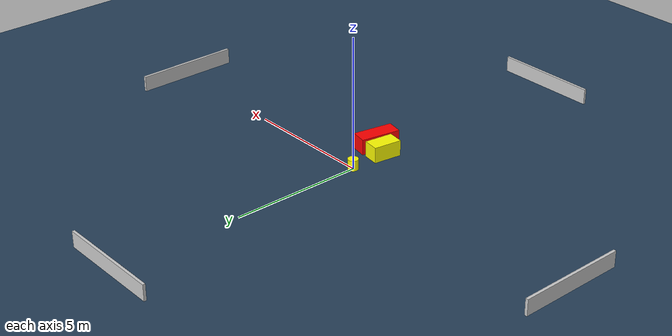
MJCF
<?xml version="1.0" ?>
<mujoco model="generated_environment">
  <option timestep="0.01" integrator="RK4" cone="elliptic"/>
  <default>
    <geom density="1"/>
  </default>
  <asset>
    <texture builtin="gradient" height="3072" name="skybox" rgb1="0.3 0.5 0.7" rgb2="0 0 0" type="skybox" width="512"/>
    <texture builtin="checker" height="300" name="groundplane" rgb1="0.2 0.3 0.4" rgb2="0.1 0.2 0.3" type="2d" width="300"/>
    <material name="groundplane" reflectance="0.2" texrepeat="5 5" texture="groundplane"/>
  </asset>
  <worldbody>
    <light dir="0 0 -1" directional="true" pos="0 0 1.5"/>
    <geom condim="3" friction="0.5 0.005 0.001" material="groundplane" name="floor" pos="0 0 0" size="0 0 0.05" type="plane"/>
    <body name="walls">
      <geom name="wall_1" condim="4" pos="-10.0 0.0 0.3" rgba="0.800000011920929 0.800000011920929 0.800000011920929 1.0" size="0.05 2.0 0.3" type="box"/>
      <geom name="wall_2" condim="4" pos="10.0 0.0 0.3" rgba="0.800000011920929 0.800000011920929 0.800000011920929 1.0" size="0.05 2.0 0.3" type="box"/>
      <geom name="wall_3" condim="4" pos="0.0 -10.0 0.3" rgba="0.800000011920929 0.800000011920929 0.800000011920929 1.0" size="2.0 0.05 0.3" type="box"/>
      <geom name="wall_4" condim="4" pos="0.0 10.0 0.3" rgba="0.800000011920929 0.800000011920929 0.800000011920929 1.0" size="2.0 0.05 0.3" type="box"/>
    </body>
    <body name="robot">
      <joint name="joint_x" type="slide" pos="0 0 0" axis="1 0 0"/>
      <joint name="joint_y" type="slide" pos="0 0 0" axis="0 1 0"/>
      <geom name="robot" type="cylinder" pos="0.0 0.0 0.2" size="0.2 0.2 0.0" mass="5.0" friction="1.0 0.005 0.0001" condim="4" rgba="1.0 1.0 0.0 1.0"/>
    </body>
    <body name="obstacle_1_movable">
      <geom name="obstacle_1_movable" condim="4" pos="0.00344121225807861 -1.4175259776389888 0.3" euler="0 0 171.74457685581214" friction="0.0 0.005 0.001" rgba="1.0 1.0 0.0 1.0" size="0.3013453972409219 0.5384641774117549 0.3" type="box" mass="0.1"/>
      <joint type="free"/>
    </body>
    <body name="obstacle_2_static">
      <geom name="obstacle_2_static" condim="4" pos="0.6768412810712354 -1.715753150224912 0.3" euler="0 0 79.1644798654885" friction="0.0 0.005 0.001" rgba="1.0 0.0 0.0 1.0" size="0.7619838121276716 0.3067798163696987 0.3" type="box"/>
    </body>
  </worldbody>
  <actuator>
    <motor name="actuator_x" joint="joint_x" gear="1" ctrlrange="-1 1"/>
    <motor name="actuator_y" joint="joint_y" gear="1" ctrlrange="-1 1"/>
  </actuator>
</mujoco>
